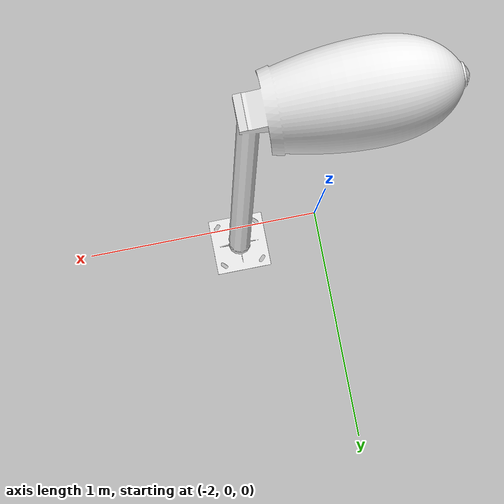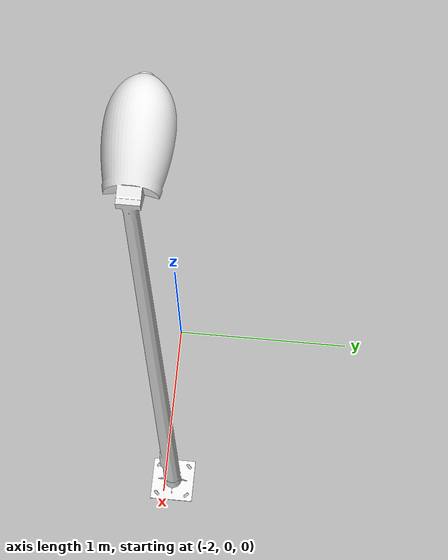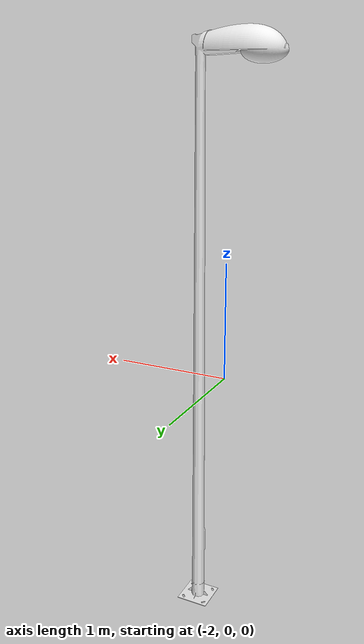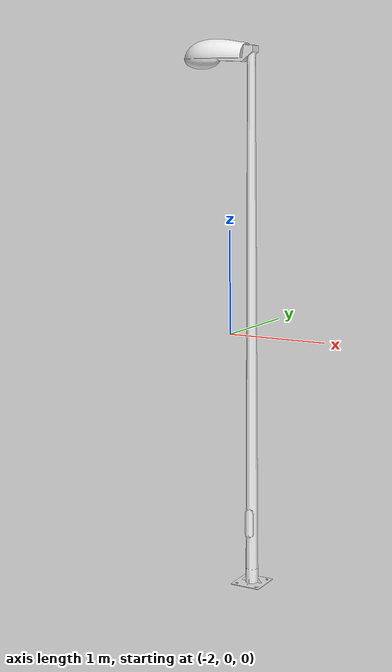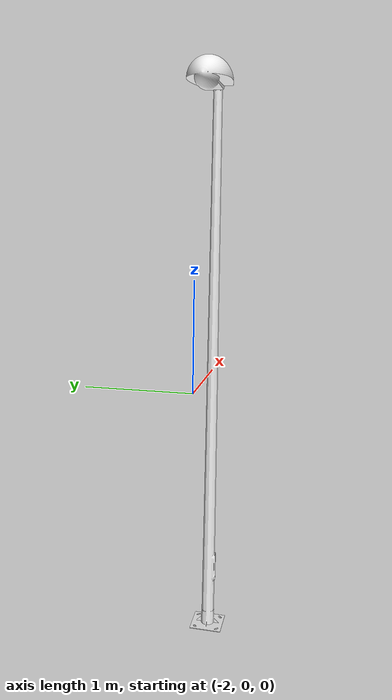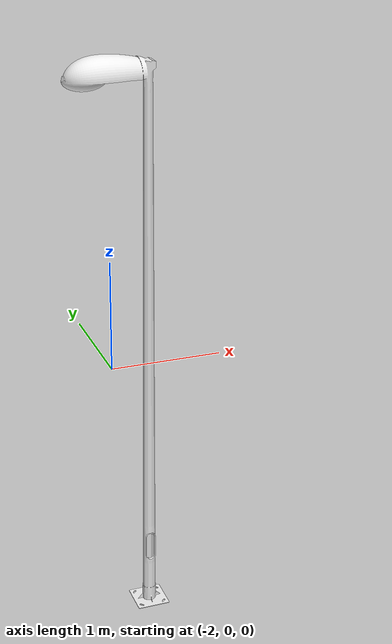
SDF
<?xml version='1.0'?>
<sdf version="1.7">
  <model name="poste">
    <static>true</static>
    <link name="poste_link">
      <collision name="poste_collision">
        <geometry>
          <mesh>
            <uri>/home/brayan/catkin_ws/src/WorldMine/Postes/poste.stl</uri>
          </mesh>
        </geometry>
      </collision>
      <visual name="poste_visual">
        <geometry>
          <mesh>
            <uri>/home/brayan/catkin_ws/src/WorldMine/Postes/poste.stl</uri>
          </mesh>
         </geometry>
         <material>
          <script>
            <uri>file://media/materials/scripts/gazebo.material</uri>
            <name>Gazebo/White</name>
          </script>
        </material>
       </visual>
    </link>
  </model>
</sdf>
